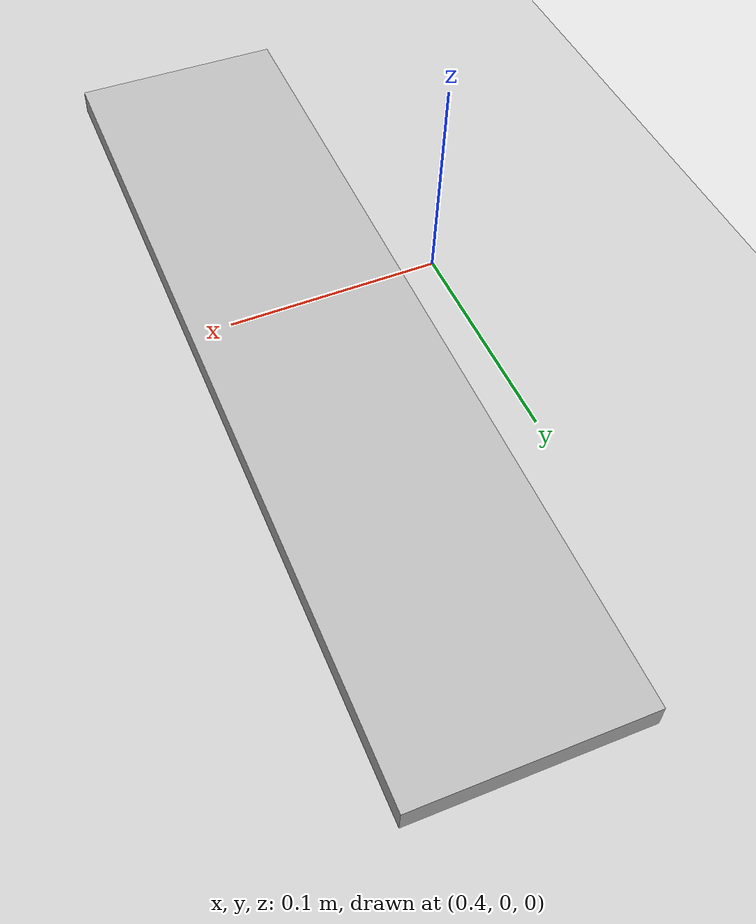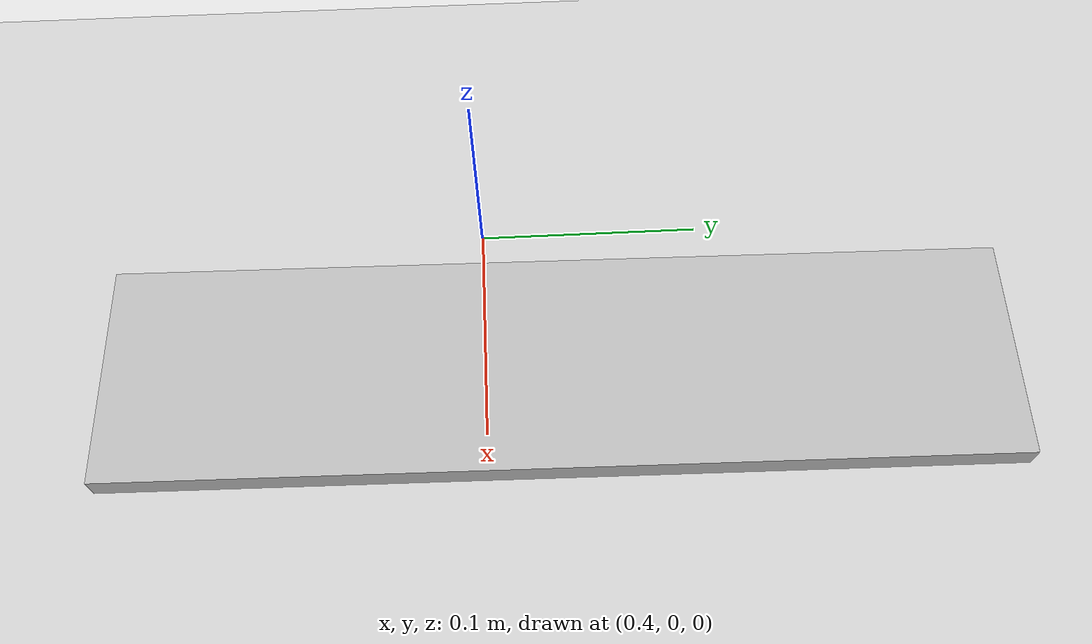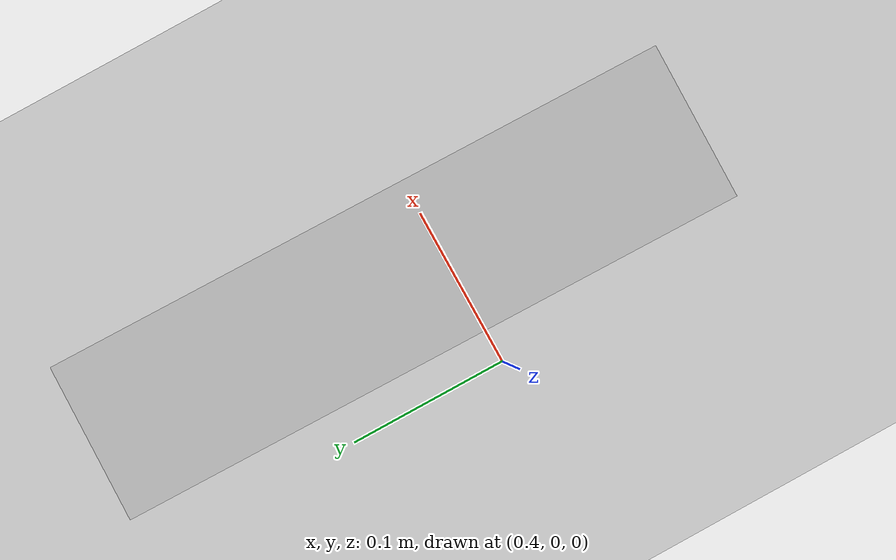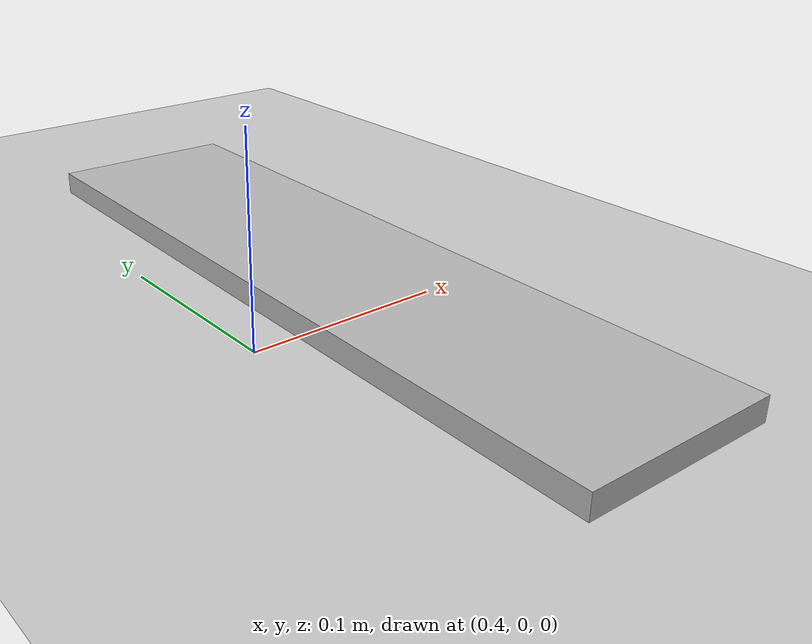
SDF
<sdf version="1.6">
 <world name="default">
  <light name="sun" type="directional">
   <pose>0 0 10 0 -0 0</pose>
   <diffuse>0.8 0.8 0.8 1</diffuse>
   <specular>0.2 0.2 0.2 1</specular>
   <attenuation>
    <range>1000</range>
    <constant>0.9</constant>
    <linear>0.01</linear>
    <quadratic>0.001</quadratic>
   </attenuation>
   <direction>-0.5 0.1 -0.9</direction>
  </light>
  <model name="ground_plane">
   <static>1</static>
   <link name="link">
    <collision name="collision">
     <geometry><plane><normal>0 0 1</normal><size>100 100</size></plane></geometry>
     <surface><friction><ode><mu>100</mu><mu2>50</mu2></ode></friction></surface>
    </collision>
    <visual name="visual">
     <cast_shadows>0</cast_shadows>
     <geometry><plane><normal>0 0 1</normal><size>100 100</size></plane></geometry>
     <material>
      <script><uri>file://media/materials/scripts/gazebo.material</uri><name>Gazebo/Grey</name></script>
     </material>
    </visual>
   </link>
  </model>
  <gravity>0 0 -9.8</gravity>
  <magnetic_field>6e-06 2.3e-05 -4.2e-05</magnetic_field>
  <atmosphere type="adiabatic"/>
  <physics name="default_physics" default="0" type="ode">
   <max_step_size>0.001</max_step_size>
   <real_time_factor>1</real_time_factor>
   <real_time_update_rate>1000</real_time_update_rate>
  </physics>
  <scene><ambient>0.4 0.4 0.4 1</ambient><background>0.7 0.7 0.7 1</background><shadows>1</shadows></scene>
  <spherical_coordinates>
   <surface_model>EARTH_WGS84</surface_model>
   <latitude_deg>0</latitude_deg>
   <longitude_deg>0</longitude_deg>
   <elevation>0</elevation>
   <heading_deg>0</heading_deg>
  </spherical_coordinates>
  <model name="flat_piece">
   <static>1</static>
   <link name="flat_piece">
    <pose>0 0 0.0275 1.571 -0 0</pose>
    <collision name="collision">
     <geometry><mesh><uri>model://flat_piece/mesh/flat_piece.stl</uri></mesh></geometry>
     <surface><friction><ode><mu>2</mu><mu2>2</mu2></ode></friction></surface>
    </collision>
    <inertial>
     <mass>5</mass>
     <inertia><ixx>1</ixx><ixy>0</ixy><ixz>0</ixz><iyy>1</iyy><iyz>0</iyz><izz>1</izz></inertia>
    </inertial>
    <visual name="visual">
     <geometry><mesh><uri>model://flat_piece/mesh/flat_piece.stl</uri></mesh></geometry>
    </visual>
   </link>
   <pose>0.519108 -0.16716 -0.026021 0 -0 1.55692</pose>
  </model>
 </world>
</sdf>
